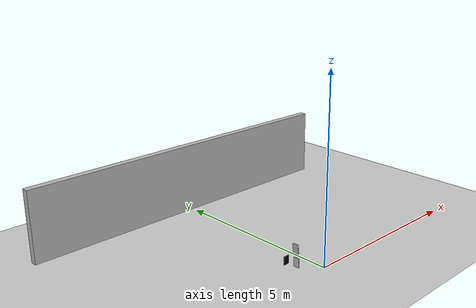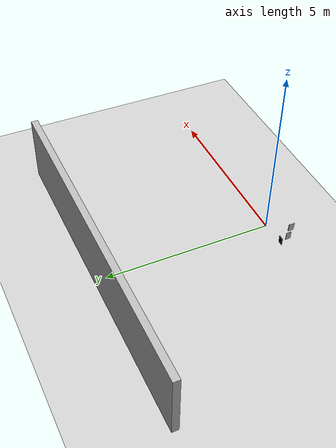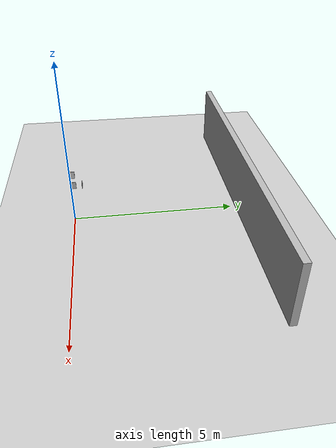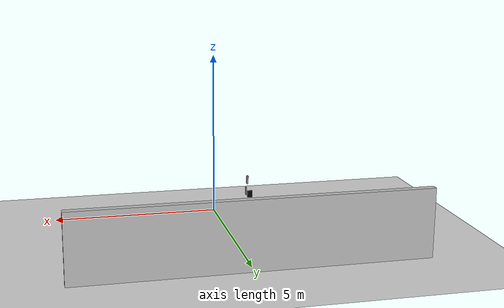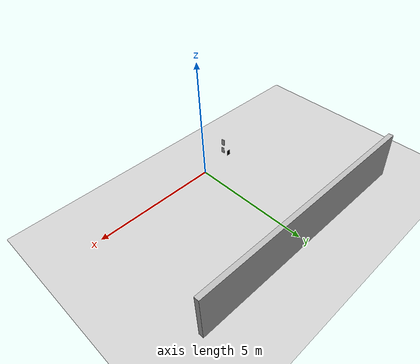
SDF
<sdf version="1.7">
 <world name="default">
  <model name="ground_plane">
   <static>1</static>
   <link name="link">
    <collision name="collision">
     <geometry><plane><normal>0 0 1</normal><size>100 100</size></plane></geometry>
     <surface><friction><ode><mu>100</mu><mu2>50</mu2></ode></friction></surface>
    </collision>
    <visual name="visual">
     <cast_shadows>0</cast_shadows>
     <geometry><plane><normal>0 0 1</normal><size>100 100</size></plane></geometry>
     <material>
      <script><uri>file://media/materials/scripts/gazebo.material</uri><name>Gazebo/Grey</name></script>
     </material>
    </visual>
   </link>
  </model>
  <model name="book_2">
   <link name="cover">
    <pose>0 -0.000108 0.015405 0 -0 0</pose>
    <visual name="visual">
     <geometry><box><size>0.245 0.16 0.03</size></box></geometry>
     <material>
      <script>
       <uri>file:///home/bruno/Downloads/lib_world_models/book_2/materials/scripts</uri>
       <uri>file:///home/bruno/Downloads/lib_world_models/book_2/materials/textures</uri>
       <name>book_2</name>
      </script>
     </material>
    </visual>
    <collision name="collision"><geometry><box><size>0.245 0.16 0.03</size></box></geometry></collision>
   </link>
   <link name="page">
    <pose>0 0.000608 0.015405 0 -0 0</pose>
    <visual name="visual">
     <geometry><box><size>0.24502 0.15862 0.028</size></box></geometry>
     <material>
      <lighting>1</lighting>
      <ambient>1 1 1 1</ambient>
      <diffuse>1 1 1 1</diffuse>
      <specular>0.01 0.01 0.01 1</specular>
      <emissive>0 0 0 1</emissive>
      <shader type="vertex"><normal_map>__default__</normal_map></shader>
     </material>
    </visual>
    <collision name="collision"><geometry><box><size>0.245 0.16 0.03</size></box></geometry></collision>
   </link>
   <static>1</static>
   <pose>-1.13115 -0.041842 0.940514 -0.063688 -1.50726 -3.08717</pose>
  </model>
  <model name="wall_1_model_clone">
   <pose>-0.031854 5.25967 1 0 -0 0</pose>
   <static>1</static>
   <link name="wall_1_body">
    <inertial>
     <mass>1</mass>
     <inertia><ixx>1</ixx><ixy>0</ixy><ixz>0</ixz><iyy>1</iyy><iyz>0</iyz><izz>1</izz></inertia>
    </inertial>
    <collision name="collision"><geometry><box><size>10 0.2 2</size></box></geometry></collision>
    <visual name="visual"><geometry><box><size>10 0.2 2</size></box></geometry></visual>
   </link>
  </model>
  <model name="book_9">
   <link name="cover">
    <pose>0 -0.000108 0.005 0 -0 0</pose>
    <visual name="visual">
     <geometry><box><size>0.245 0.16 0.01</size></box></geometry>
     <material>
      <script>
       <uri>file:///home/bruno/Downloads/lib_world_models/book_9/materials/scripts</uri>
       <uri>file:///home/bruno/Downloads/lib_world_models/book_9/materials/textures</uri>
       <name>book_9</name>
      </script>
     </material>
    </visual>
    <collision name="collision"><geometry><box><size>0.245 0.16 0.01</size></box></geometry></collision>
   </link>
   <link name="page">
    <pose>0 0.000608 0.005 0 -0 0</pose>
    <visual name="visual">
     <geometry><box><size>0.24502 0.15862 0.008</size></box></geometry>
     <material>
      <lighting>1</lighting>
      <ambient>1 1 1 1</ambient>
      <diffuse>1 1 1 1</diffuse>
      <specular>0.01 0.01 0.01 1</specular>
      <emissive>0 0 0 1</emissive>
      <shader type="vertex"><normal_map>__default__</normal_map></shader>
     </material>
    </visual>
    <collision name="collision"><geometry><box><size>0.245 0.16 0.008</size></box></geometry></collision>
   </link>
   <static>1</static>
   <pose>-1.07794 -0.028757 0.569127 0 -1.55408 -3.10362</pose>
  </model>
  <model name="retry_6_clone_5_clone_2">
   <link name="link">
    <inertial>
     <mass>0.1</mass>
     <inertia>
      <ixx>0.00037145</ixx>
      <ixy>0</ixy>
      <ixz>0</ixz>
      <iyy>0.00019446</iyy>
      <iyz>0</iyz>
      <izz>0.00056106</izz>
     </inertia>
    </inertial>
    <visual name="visual">
     <geometry><box><size>0.151804 0.220309 0.017052</size></box></geometry>
     <material>
      <shader type="pixel"><normal_map>__default__</normal_map></shader>
      <script><name>ModelPreview_7::link::visual_MATERIAL_</name><uri>__default__</uri></script>
      <ambient>0 0 0 1</ambient>
      <diffuse>0 0 0 1</diffuse>
      <specular>0 0 0 1</specular>
      <emissive>0 0 0 1</emissive>
     </material>
    </visual>
    <collision name="collision">
     <geometry><box><size>0.151804 0.220309 0.017052</size></box></geometry>
     <surface>
      <friction>
       <ode><mu>3.5</mu><mu2>3.5</mu2><fdir1>0 0 0</fdir1><slip1>-0</slip1><slip2>-0</slip2></ode>
       <torsional>
        <coefficient>1</coefficient>
        <patch_radius>0</patch_radius>
        <surface_radius>0</surface_radius>
        <use_patch_radius>1</use_patch_radius>
        <ode><slip>0</slip></ode>
       </torsional>
      </friction>
      <bounce><restitution_coefficient>0</restitution_coefficient><threshold>1e+06</threshold></bounce>
      <contact>
       <collide_without_contact>0</collide_without_contact>
       <collide_without_contact_bitmask>1</collide_without_contact_bitmask>
       <collide_bitmask>1</collide_bitmask>
       <ode>
        <soft_cfm>0</soft_cfm>
        <soft_erp>0.2</soft_erp>
        <kp>1e+13</kp>
        <kd>1</kd>
        <max_vel>0.01</max_vel>
        <min_depth>0</min_depth>
       </ode>
       <bullet>
        <split_impulse>1</split_impulse>
        <split_impulse_penetration_threshold>-0.01</split_impulse_penetration_threshold>
        <soft_cfm>0</soft_cfm>
        <soft_erp>0.2</soft_erp>
        <kp>1e+13</kp>
        <kd>1</kd>
       </bullet>
      </contact>
     </surface>
    </collision>
   </link>
   <static>0</static>
   <pose>-1.1268 0.245961 0.550154 -1.5708 1.1e-05 9.6e-05</pose>
  </model>
 </world>
</sdf>
